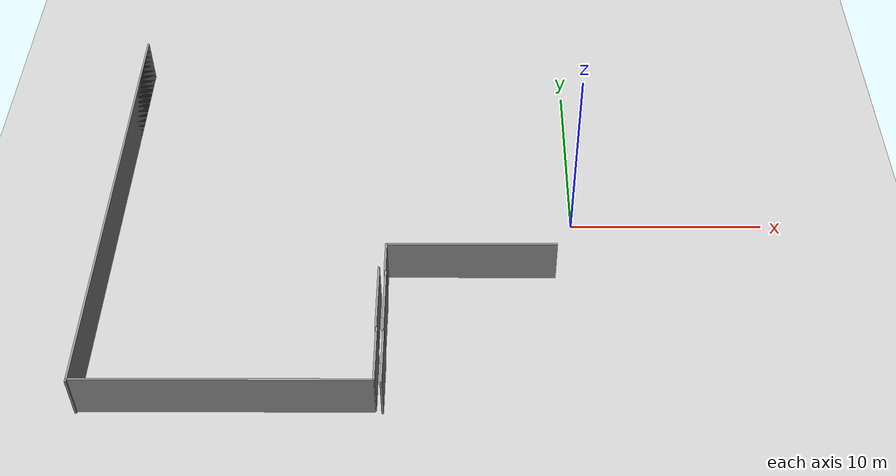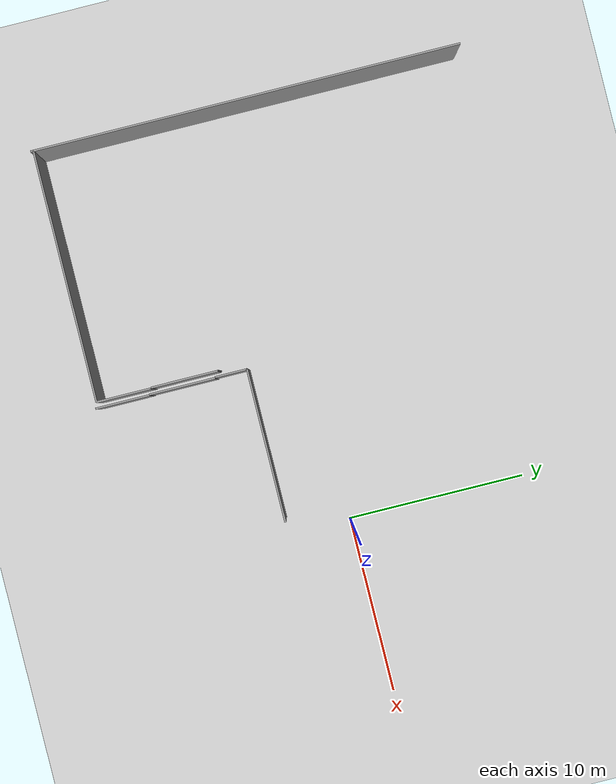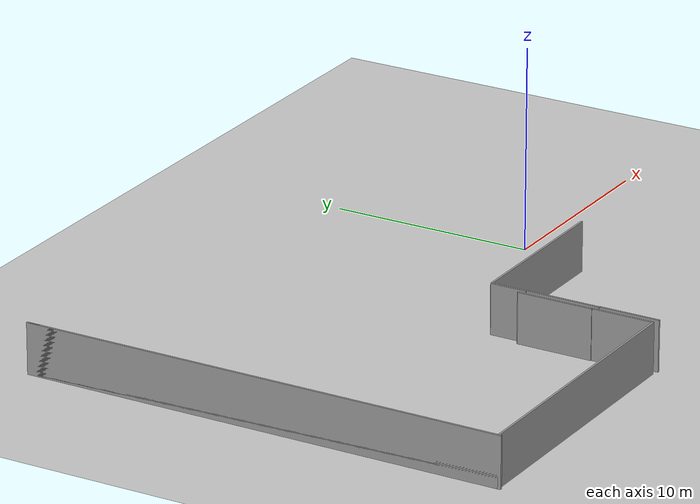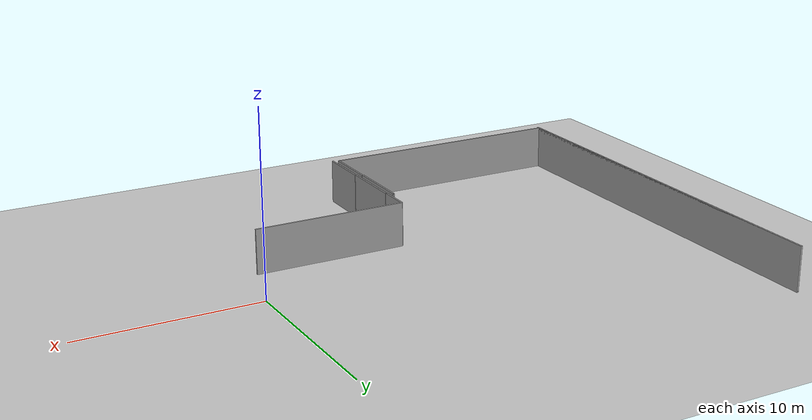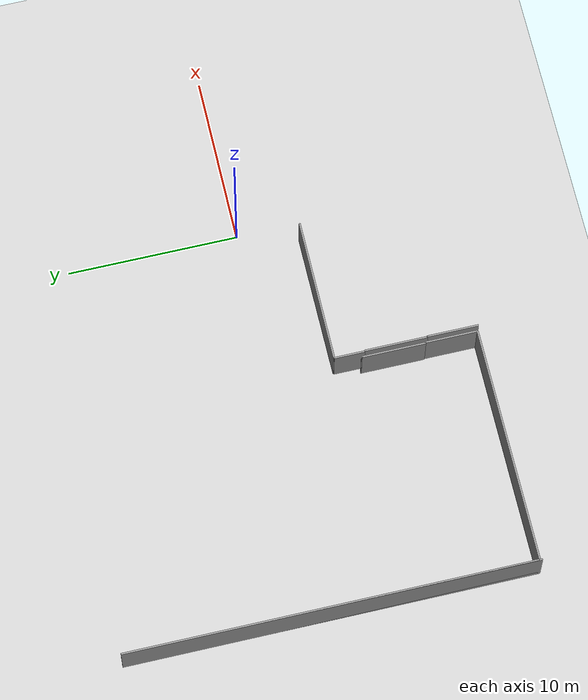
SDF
<sdf version="1.6">
 <world name="default">
  <model name="ground_plane">
   <static>1</static>
   <link name="link">
    <collision name="collision">
     <geometry><plane><normal>0 0 1</normal><size>100 100</size></plane></geometry>
     <surface><friction><ode><mu>100</mu><mu2>50</mu2></ode></friction></surface>
    </collision>
    <visual name="visual">
     <cast_shadows>0</cast_shadows>
     <geometry><plane><normal>0 0 1</normal><size>100 100</size></plane></geometry>
     <material>
      <script><uri>file://media/materials/scripts/gazebo.material</uri><name>Gazebo/Grey</name></script>
     </material>
    </visual>
   </link>
  </model>
  <model name="0510030940_A_40_1_104">
   <static>1</static>
   <link name="Wall_0">
    <collision name="Wall_0_Collision">
     <geometry><box><size>23.7750330385 0.1 2.5</size></box></geometry>
     <pose>11.8875165193 0 1.25 0 0 0</pose>
    </collision>
    <visual name="Wall_0_Visual">
     <pose>11.8875165193 0 1.25 0 0 0</pose>
     <geometry><box><size>23.7750330385 0.1 2.5</size></box></geometry>
     <material>
      <script><uri>file://media/materials/scripts/gazebo.material</uri><name>Gazebo/Grey</name></script>
      <ambient>1 1 1 1</ambient>
     </material>
    </visual>
    <pose>0.0 -23.7750330385 0 0 0 1.57079632679</pose>
   </link>
   <link name="Wall_12">
    <collision name="Wall_12_Collision">
     <geometry><box><size>0.0388838060384 0.1 2.5</size></box></geometry>
     <pose>0.0194419030192 0 1.25 0 0 0</pose>
    </collision>
    <visual name="Wall_12_Visual">
     <pose>0.0194419030192 0 1.25 0 0 0</pose>
     <geometry><box><size>0.0388838060384 0.1 2.5</size></box></geometry>
     <material>
      <script><uri>file://media/materials/scripts/gazebo.material</uri><name>Gazebo/Grey</name></script>
      <ambient>1 1 1 1</ambient>
     </material>
    </visual>
    <pose>13.918115279 -17.0147148521 0 0 0 0.0</pose>
   </link>
   <link name="Wall_13">
    <collision name="Wall_13_Collision">
     <geometry><box><size>3.72509403273 0.1 2.5</size></box></geometry>
     <pose>1.86254701637 0 1.25 0 0 0</pose>
    </collision>
    <visual name="Wall_13_Visual">
     <pose>1.86254701637 0 1.25 0 0 0</pose>
     <geometry><box><size>3.72509403273 0.1 2.5</size></box></geometry>
     <material>
      <script><uri>file://media/materials/scripts/gazebo.material</uri><name>Gazebo/Grey</name></script>
      <ambient>1 1 1 1</ambient>
     </material>
    </visual>
    <pose>13.9569990851 -17.0147148521 0 0 0 -1.57079632679</pose>
   </link>
   <link name="Wall_14">
    <collision name="Wall_14_Collision">
     <geometry><box><size>0.0386296635153 0.1 2.5</size></box></geometry>
     <pose>0.0193148317576 0 1.25 0 0 0</pose>
    </collision>
    <visual name="Wall_14_Visual">
     <pose>0.0193148317576 0 1.25 0 0 0</pose>
     <geometry><box><size>0.0386296635153 0.1 2.5</size></box></geometry>
     <material>
      <script><uri>file://media/materials/scripts/gazebo.material</uri><name>Gazebo/Grey</name></script>
      <ambient>1 1 1 1</ambient>
     </material>
    </visual>
    <pose>13.9569990851 -20.7398088848 0 0 0 0.0</pose>
   </link>
   <link name="Wall_15">
    <collision name="Wall_15_Collision">
     <geometry><box><size>3.04043407543 0.1 2.5</size></box></geometry>
     <pose>1.52021703771 0 1.25 0 0 0</pose>
    </collision>
    <visual name="Wall_15_Visual">
     <pose>1.52021703771 0 1.25 0 0 0</pose>
     <geometry><box><size>3.04043407543 0.1 2.5</size></box></geometry>
     <material>
      <script><uri>file://media/materials/scripts/gazebo.material</uri><name>Gazebo/Grey</name></script>
      <ambient>1 1 1 1</ambient>
     </material>
    </visual>
    <pose>13.9956287486 -20.7398088848 0 0 0 -1.57079632679</pose>
   </link>
   <link name="Wall_16">
    <collision name="Wall_16_Collision">
     <geometry><box><size>13.9956297183 0.1 2.5</size></box></geometry>
     <pose>6.99781485915 0 1.25 0 0 0</pose>
    </collision>
    <visual name="Wall_16_Visual">
     <pose>6.99781485915 0 1.25 0 0 0</pose>
     <geometry><box><size>13.9956297183 0.1 2.5</size></box></geometry>
     <material>
      <script><uri>file://media/materials/scripts/gazebo.material</uri><name>Gazebo/Grey</name></script>
      <ambient>1 1 1 1</ambient>
     </material>
    </visual>
    <pose>13.9956287486 -23.7802429603 0 0 0 3.14122040011</pose>
   </link>
   <link name="Wall_47">
    <collision name="Wall_47_Collision">
     <geometry><box><size>2.99532377757 0.1 2.5</size></box></geometry>
     <pose>1.49766188879 0 1.25 0 0 0</pose>
    </collision>
    <visual name="Wall_47_Visual">
     <pose>1.49766188879 0 1.25 0 0 0</pose>
     <geometry><box><size>2.99532377757 0.1 2.5</size></box></geometry>
     <material>
      <script><uri>file://media/materials/scripts/gazebo.material</uri><name>Gazebo/Grey</name></script>
      <ambient>1 1 1 1</ambient>
     </material>
    </visual>
    <pose>14.3270305988 -23.9163362814 0 0 0 1.57079632679</pose>
   </link>
   <link name="Wall_48">
    <collision name="Wall_48_Collision">
     <geometry><box><size>0.0325302429603 0.1 2.5</size></box></geometry>
     <pose>0.0162651214801 0 1.25 0 0 0</pose>
    </collision>
    <visual name="Wall_48_Visual">
     <pose>0.0162651214801 0 1.25 0 0 0</pose>
     <geometry><box><size>0.0325302429603 0.1 2.5</size></box></geometry>
     <material>
      <script><uri>file://media/materials/scripts/gazebo.material</uri><name>Gazebo/Grey</name></script>
      <ambient>1 1 1 1</ambient>
     </material>
    </visual>
    <pose>14.3270305988 -20.9210125038 0 0 0 3.14159265359</pose>
   </link>
   <link name="Wall_49">
    <collision name="Wall_49_Collision">
     <geometry><box><size>3.67083460405 0.1 2.5</size></box></geometry>
     <pose>1.83541730202 0 1.25 0 0 0</pose>
    </collision>
    <visual name="Wall_49_Visual">
     <pose>1.83541730202 0 1.25 0 0 0</pose>
     <geometry><box><size>3.67083460405 0.1 2.5</size></box></geometry>
     <material>
      <script><uri>file://media/materials/scripts/gazebo.material</uri><name>Gazebo/Grey</name></script>
      <ambient>1 1 1 1</ambient>
     </material>
    </visual>
    <pose>14.2945003558 -20.9210125038 0 0 0 1.57079632679</pose>
   </link>
   <link name="Wall_50">
    <collision name="Wall_50_Collision">
     <geometry><box><size>0.0400274473925 0.1 2.5</size></box></geometry>
     <pose>0.0200137236962 0 1.25 0 0 0</pose>
    </collision>
    <visual name="Wall_50_Visual">
     <pose>0.0200137236962 0 1.25 0 0 0</pose>
     <geometry><box><size>0.0400274473925 0.1 2.5</size></box></geometry>
     <material>
      <script><uri>file://media/materials/scripts/gazebo.material</uri><name>Gazebo/Grey</name></script>
      <ambient>1 1 1 1</ambient>
     </material>
    </visual>
    <pose>14.2945003558 -17.2501778998 0 0 0 3.14159265359</pose>
   </link>
   <link name="Wall_51">
    <collision name="Wall_51_Collision">
     <geometry><box><size>1.78204737217 0.1 2.5</size></box></geometry>
     <pose>0.891023686083 0 1.25 0 0 0</pose>
    </collision>
    <visual name="Wall_51_Visual">
     <pose>0.891023686083 0 1.25 0 0 0</pose>
     <geometry><box><size>1.78204737217 0.1 2.5</size></box></geometry>
     <material>
      <script><uri>file://media/materials/scripts/gazebo.material</uri><name>Gazebo/Grey</name></script>
      <ambient>1 1 1 1</ambient>
     </material>
    </visual>
    <pose>14.2544729084 -17.2501778998 0 0 0 1.57079632679</pose>
   </link>
   <link name="Wall_52">
    <collision name="Wall_52_Collision">
     <geometry><box><size>8.51961980279 0.1 2.5</size></box></geometry>
     <pose>4.25980990139 0 1.25 0 0 0</pose>
    </collision>
    <visual name="Wall_52_Visual">
     <pose>4.25980990139 0 1.25 0 0 0</pose>
     <geometry><box><size>8.51961980279 0.1 2.5</size></box></geometry>
     <material>
      <script><uri>file://media/materials/scripts/gazebo.material</uri><name>Gazebo/Grey</name></script>
      <ambient>1 1 1 1</ambient>
     </material>
    </visual>
    <pose>14.2544729084 -15.4681305276 0 0 0 0.0</pose>
   </link>
   <link name="Wall_159">
    <collision name="Wall_159_Collision">
     <geometry><box><size>23.9314577615 0.1 2.5</size></box></geometry>
     <pose>11.9657288808 0 1.25 0 0 0</pose>
    </collision>
    <visual name="Wall_159_Visual">
     <pose>11.9657288808 0 1.25 0 0 0</pose>
     <geometry><box><size>23.9314577615 0.1 2.5</size></box></geometry>
     <material>
      <script><uri>file://media/materials/scripts/gazebo.material</uri><name>Gazebo/Grey</name></script>
      <ambient>1 1 1 1</ambient>
     </material>
    </visual>
    <pose>0.0 -23.9314577615 0 0 0 1.57079632679</pose>
   </link>
   <pose>-23.75 11.9814577615 0 0 0 0</pose>
  </model>
 </world>
</sdf>
